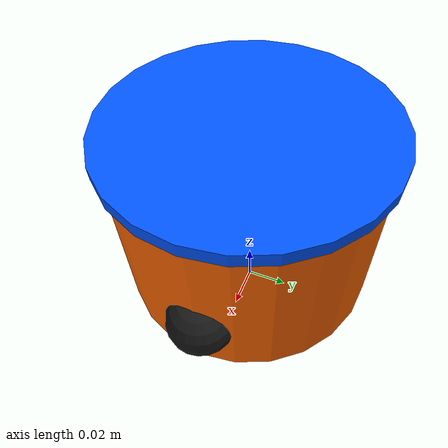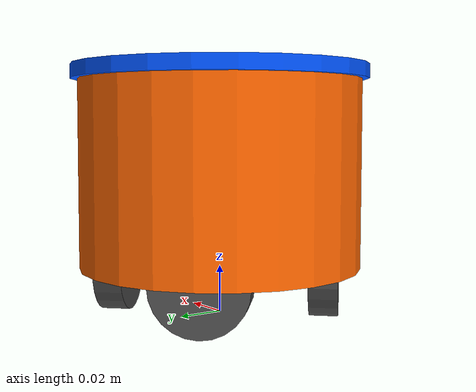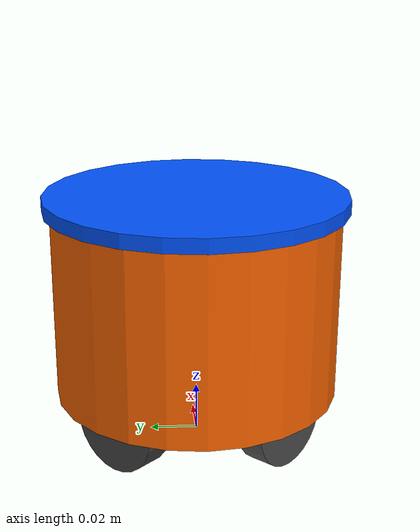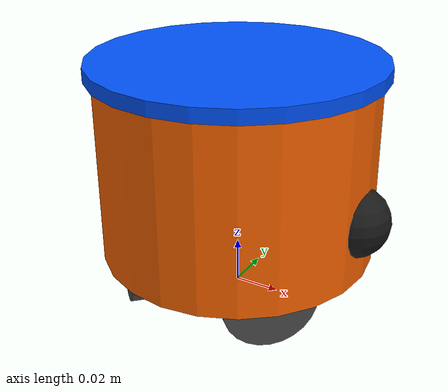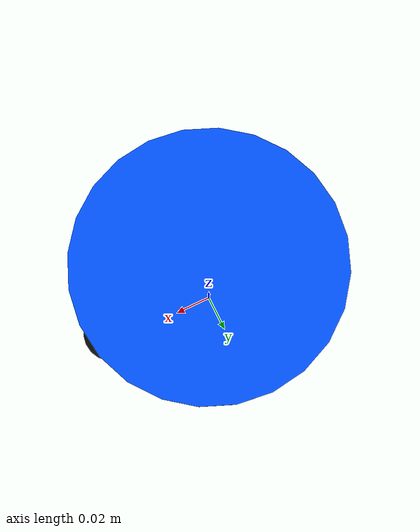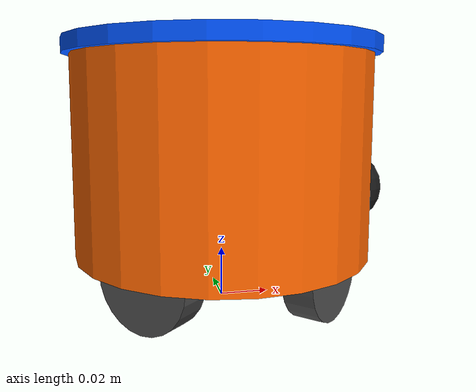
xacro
<?xml version="1.0"?>
<robot name="omniwheel_robot" xmlns:xacro="http://www.ros.org/wiki/xacro">

  <!-- ==================== PARAMETERS ==================== -->

  <!-- Robot body dimensions - scaled to realistic small robot (radius ~0.06m) -->
  <xacro:property name="body_radius" value="0.06"/>
  <xacro:property name="body_height" value="0.08"/>
  <xacro:property name="body_mass" value="0.8"/>

  <!-- Wheel parameters - scaled proportionally -->
  <xacro:property name="wheel_radius" value="0.02"/>
  <xacro:property name="wheel_width" value="0.012"/>
  <xacro:property name="wheel_mass" value="0.05"/>
  <xacro:property name="wheel_distance" value="0.045"/>

  <!-- Bumper parameters -->
  <xacro:property name="bumper_radius" value="0.015"/>
  <xacro:property name="bumper_offset_x" value="0.055"/>
  <xacro:property name="bumper_height" value="0.025"/>

  <!-- ==================== MATERIALS ==================== -->

  <material name="orange">
    <color rgba="1.0 0.4 0.0 1.0"/>
  </material>

  <material name="black">
    <color rgba="0.1 0.1 0.1 1.0"/>
  </material>

  <material name="dark_gray">
    <color rgba="0.3 0.3 0.3 1.0"/>
  </material>

  <material name="blue">
    <color rgba="0.0 0.33 1.0 1.0"/>
  </material>

  <!-- ==================== WORLD LINK ==================== -->

  <link name="world"/>

  <!-- ==================== PLANAR JOINTS (for velocity control) ==================== -->

  <!-- X translation joint -->
  <joint name="x_joint" type="prismatic">
    <parent link="world"/>
    <child link="x_carrier"/>
    <origin xyz="0 0 ${wheel_radius}" rpy="0 0 0"/>
    <axis xyz="1 0 0"/>
    <limit lower="-100" upper="100" effort="1000" velocity="10"/>
    <dynamics damping="1.0"/>
  </joint>

  <link name="x_carrier">
    <inertial>
      <mass value="0.01"/>
      <inertia ixx="0.0001" ixy="0" ixz="0" iyy="0.0001" iyz="0" izz="0.0001"/>
    </inertial>
  </link>

  <!-- Y translation joint -->
  <joint name="y_joint" type="prismatic">
    <parent link="x_carrier"/>
    <child link="y_carrier"/>
    <origin xyz="0 0 0" rpy="0 0 0"/>
    <axis xyz="0 1 0"/>
    <limit lower="-100" upper="100" effort="1000" velocity="10"/>
    <dynamics damping="1.0"/>
  </joint>

  <link name="y_carrier">
    <inertial>
      <mass value="0.01"/>
      <inertia ixx="0.0001" ixy="0" ixz="0" iyy="0.0001" iyz="0" izz="0.0001"/>
    </inertial>
  </link>

  <!-- Theta rotation joint -->
  <joint name="theta_joint" type="continuous">
    <parent link="y_carrier"/>
    <child link="base_link"/>
    <origin xyz="0 0 0" rpy="0 0 0"/>
    <axis xyz="0 0 1"/>
    <limit effort="1000" velocity="20"/>
    <dynamics damping="0.5"/>
  </joint>

  <!-- ==================== BASE LINK ==================== -->

  <link name="base_link">
    <!-- Main cylindrical body -->
    <visual>
      <geometry>
        <cylinder length="${body_height}" radius="${body_radius}"/>
      </geometry>
      <origin rpy="0 0 0" xyz="0 0 ${body_height/2}"/>
      <material name="orange"/>
    </visual>

    <!-- Top marker ring -->
    <visual>
      <geometry>
        <cylinder length="0.006" radius="${body_radius + 0.003}"/>
      </geometry>
      <origin rpy="0 0 0" xyz="0 0 ${body_height + 0.003}"/>
      <material name="blue"/>
    </visual>

    <collision>
      <geometry>
        <cylinder length="${body_height}" radius="${body_radius}"/>
      </geometry>
      <origin rpy="0 0 0" xyz="0 0 ${body_height/2}"/>
    </collision>

    <inertial>
      <mass value="${body_mass}"/>
      <origin xyz="0 0 ${body_height/2}"/>
      <!-- Cylinder inertia: Ixx=Iyy=m(3r^2+h^2)/12, Izz=mr^2/2 -->
      <inertia ixx="${body_mass*(3*body_radius*body_radius + body_height*body_height)/12}"
               ixy="0" ixz="0"
               iyy="${body_mass*(3*body_radius*body_radius + body_height*body_height)/12}"
               iyz="0"
               izz="${body_mass*body_radius*body_radius/2}"/>
    </inertial>
  </link>

  <!-- ==================== BUMPER ==================== -->

  <joint name="bumper_joint" type="fixed">
    <parent link="base_link"/>
    <child link="bumper"/>
    <origin xyz="${bumper_offset_x} 0 ${bumper_height}" rpy="0 0 0"/>
  </joint>

  <link name="bumper">
    <visual>
      <geometry>
        <sphere radius="${bumper_radius}"/>
      </geometry>
      <material name="black"/>
    </visual>

    <collision>
      <geometry>
        <sphere radius="${bumper_radius}"/>
      </geometry>
    </collision>

    <inertial>
      <mass value="0.2"/>
      <inertia ixx="0.0001" ixy="0" ixz="0" iyy="0.0001" iyz="0" izz="0.0001"/>
    </inertial>
  </link>

  <!-- ==================== WHEEL MACRO ==================== -->

  <xacro:macro name="wheel" params="name x y angle">
    <joint name="${name}_joint" type="continuous">
      <parent link="base_link"/>
      <child link="${name}_link"/>
      <origin xyz="${x} ${y} 0" rpy="${-1.5708} 0 ${angle}"/>
      <axis xyz="0 0 1"/>
      <limit effort="100" velocity="100"/>
      <dynamics damping="0.01"/>
    </joint>

    <link name="${name}_link">
      <visual>
        <geometry>
          <cylinder length="${wheel_width}" radius="${wheel_radius}"/>
        </geometry>
        <material name="dark_gray"/>
      </visual>

      <collision>
        <geometry>
          <cylinder length="${wheel_width}" radius="${wheel_radius}"/>
        </geometry>
      </collision>

      <inertial>
        <mass value="${wheel_mass}"/>
        <inertia ixx="${wheel_mass*(3*wheel_radius*wheel_radius + wheel_width*wheel_width)/12}"
                 ixy="0" ixz="0"
                 iyy="${wheel_mass*(3*wheel_radius*wheel_radius + wheel_width*wheel_width)/12}"
                 iyz="0"
                 izz="${wheel_mass*wheel_radius*wheel_radius/2}"/>
      </inertial>
    </link>
  </xacro:macro>

  <!-- ==================== WHEEL INSTANCES ==================== -->
  <!-- Wheels at 45°, 135°, 225°, 315° from center -->

  <!-- Front-Right wheel (45°) -->
  <xacro:wheel name="wheel_fr"
               x="${wheel_distance * 0.707}"
               y="${-wheel_distance * 0.707}"
               angle="${0.785398}"/>

  <!-- Front-Left wheel (135°) -->
  <xacro:wheel name="wheel_fl"
               x="${wheel_distance * 0.707}"
               y="${wheel_distance * 0.707}"
               angle="${2.356194}"/>

  <!-- Rear-Left wheel (225°) -->
  <xacro:wheel name="wheel_rl"
               x="${-wheel_distance * 0.707}"
               y="${wheel_distance * 0.707}"
               angle="${3.926991}"/>

  <!-- Rear-Right wheel (315°) -->
  <xacro:wheel name="wheel_rr"
               x="${-wheel_distance * 0.707}"
               y="${-wheel_distance * 0.707}"
               angle="${5.497787}"/>

</robot>
